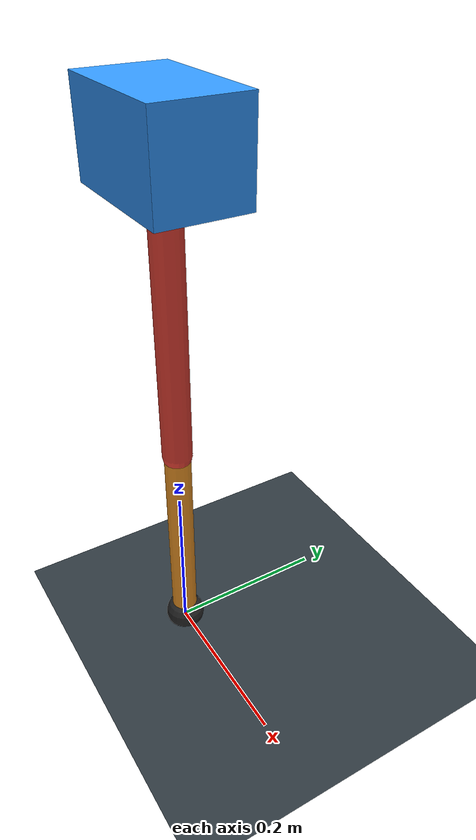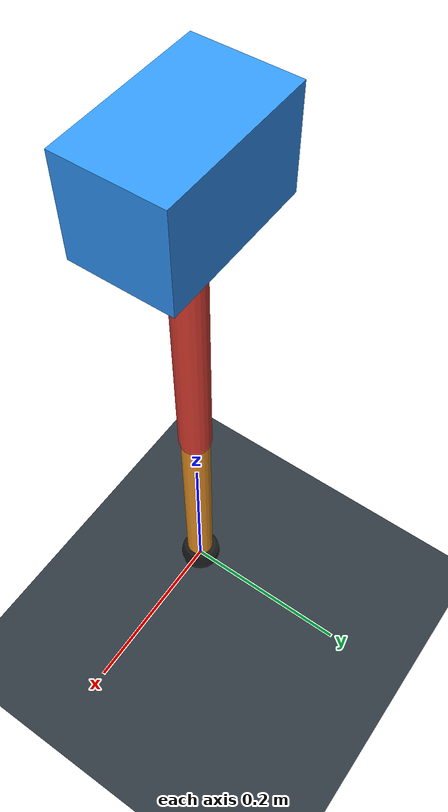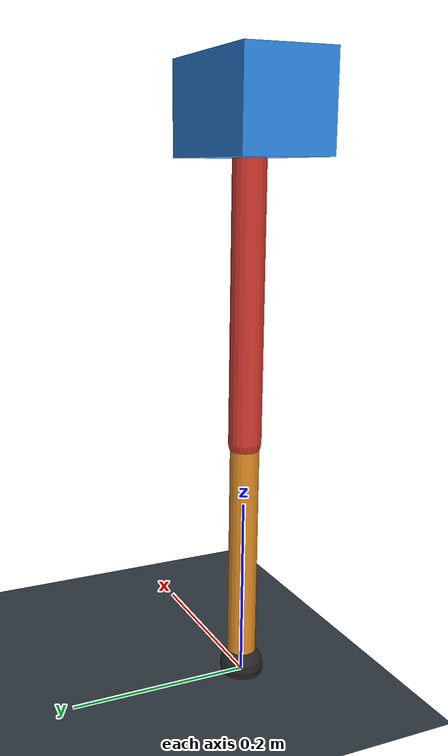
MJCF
<mujoco model="single_axis_two_bar">
  <compiler angle="radian" inertiafromgeom="true"/>
  <option timestep="0.001" integrator="implicitfast" gravity="0 0 -9.81"/>
  <default>
    <joint damping="0.08"/>
    <geom friction="1.2 0.01 0.0001" condim="3"/>
  </default>
  <worldbody>
    <geom name="floor" type="plane" size="5 5 0.1" rgba="0.18 0.22 0.25 1"/>
    <body name="carriage" pos="0 0 0.6208533808439306">
      <joint name="pole_slide" type="slide" axis="0 0 1"/>
      <geom name="payload" type="box" size="0.08 0.05 0.05" mass="2.4096462931208418" rgba="0.2 0.6 1 1"/>
      <body name="thigh" pos="0 0 0">
        <joint name="hip" type="hinge" axis="0 1 0"/>
        <geom name="thigh_link" type="capsule" fromto="0 0 0 0 0 -0.34994061234965634" size="0.018" mass="0.24933731035634935" rgba="0.9 0.25 0.2 1"/>
        <body name="shank" pos="0 0 -0.34994061234965634">
          <joint name="knee" type="hinge" axis="0 1 0"/>
          <geom name="shank_link" type="capsule" fromto="0 0 0 0 0 -0.2643412235719216" size="0.016" mass="0.18834661475608538" rgba="0.95 0.6 0.15 1"/>
          <geom name="foot" type="sphere" pos="0 0 -0.2643412235719216" size="0.025" mass="0.03" rgba="0.15 0.15 0.15 1"/>
          <site name="toe" pos="0 0 -0.2643412235719216" size="0.008"/>
        </body>
      </body>
    </body>
  </worldbody>
  <actuator>
    <motor name="hip_motor" joint="hip" ctrlrange="-38.47138093210971 38.47138093210971"/>
    <motor name="knee_motor" joint="knee" ctrlrange="-90.71550346458007 90.71550346458007"/>
  </actuator>
</mujoco>
